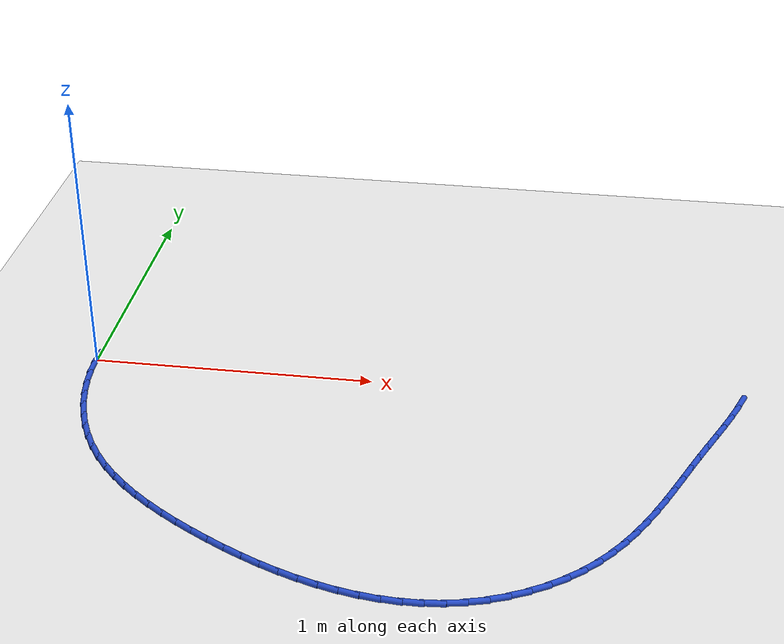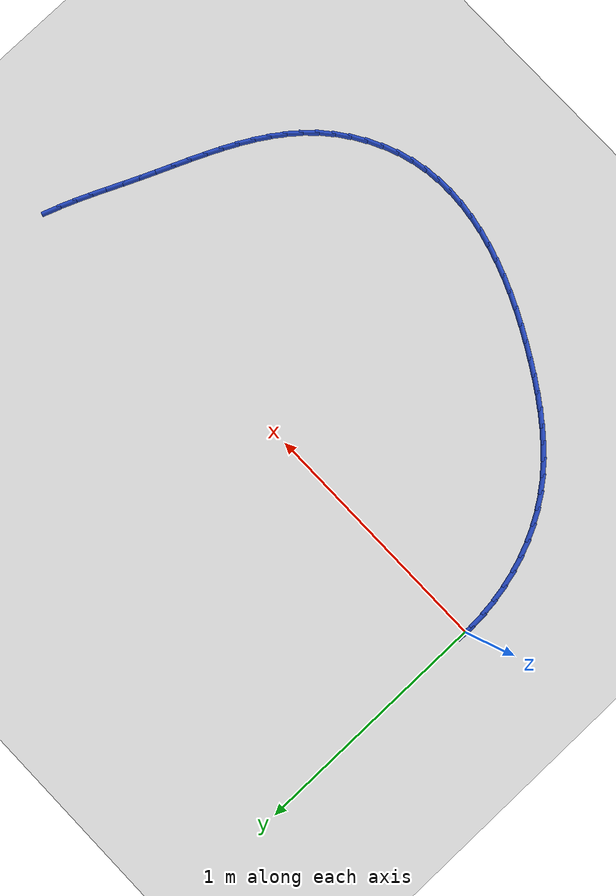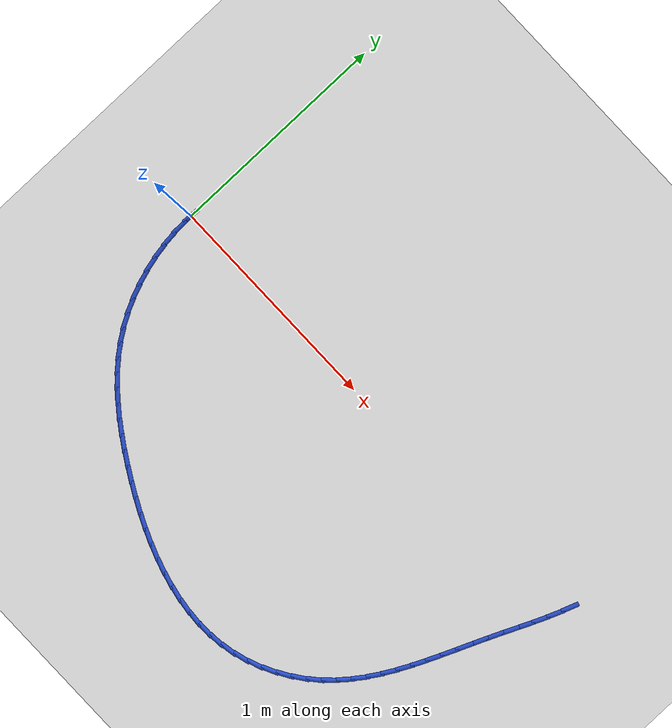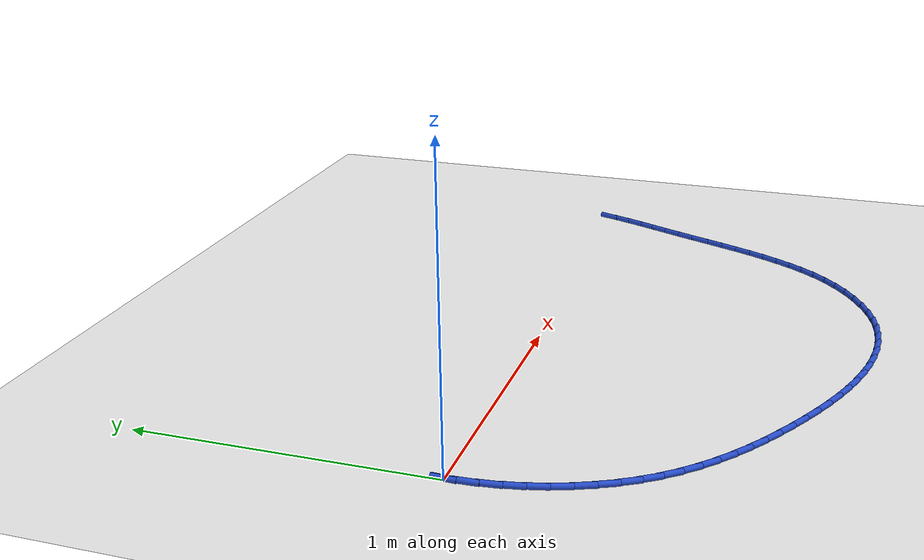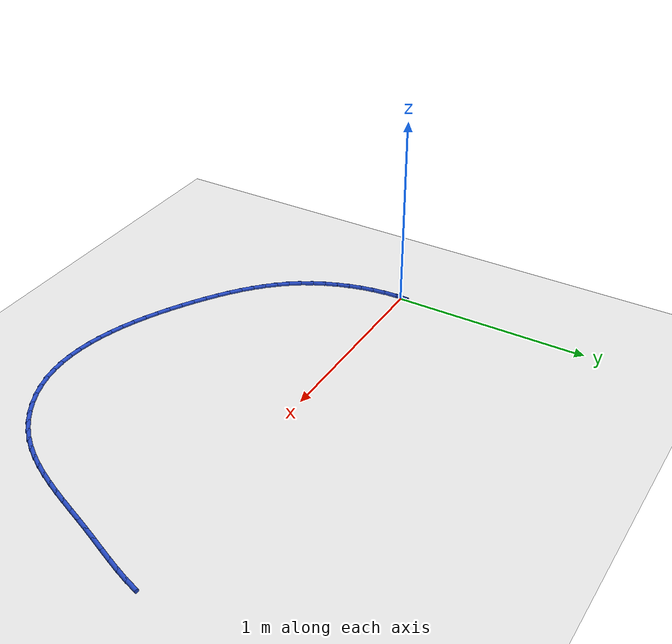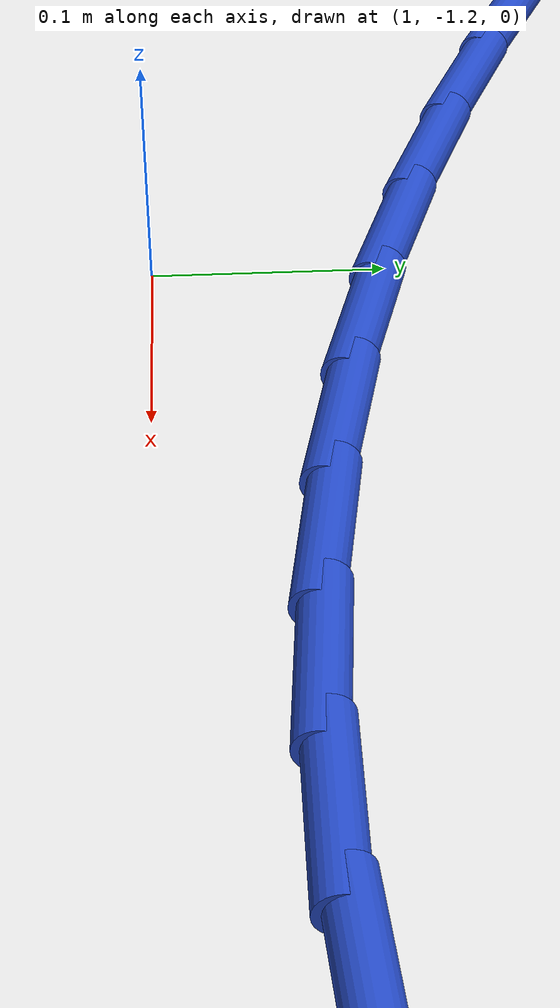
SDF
<sdf version="1.6">
 <world name="default">
  <model name="ground_plane">
   <static>1</static>
   <link name="link">
    <collision name="collision">
     <geometry><plane><normal>0 0 1</normal><size>100 100</size></plane></geometry>
     <surface><friction><ode><mu>100</mu><mu2>50</mu2></ode></friction></surface>
    </collision>
    <visual name="visual">
     <cast_shadows>0</cast_shadows>
     <geometry><plane><normal>0 0 1</normal><size>100 100</size></plane></geometry>
     <material>
      <script><uri>file://media/materials/scripts/gazebo.material</uri><name>Gazebo/WhiteGlow</name></script>
     </material>
    </visual>
   </link>
  </model>
  <model name="line">
   <link name="link_0">
    <pose>-5.551115123125783e-17 2.7755575615628914e-17 0.01 0 1.57 1.5302015686070916</pose>
    <collision name="collision">
     <geometry><cylinder><radius>0.01</radius><length>0.08</length></cylinder></geometry>
    </collision>
    <visual name="visual">
     <material>
      <script><name>Gazebo/Blue</name><uri>file://media/materials/scripts/gazebo.material</uri></script>
     </material>
     <geometry><cylinder><radius>0.01</radius><length>0.08</length></cylinder></geometry>
    </visual>
   </link>
   <link name="link_56">
    <pose>2.2851389751988016 0.035989403165090875 0.01 0 1.57 1.2219647454686706</pose>
    <collision name="collision">
     <geometry><cylinder><radius>0.01</radius><length>0.08</length></cylinder></geometry>
    </collision>
    <visual name="visual">
     <material>
      <script><name>Gazebo/Blue</name><uri>file://media/materials/scripts/gazebo.material</uri></script>
     </material>
     <geometry><cylinder><radius>0.01</radius><length>0.08</length></cylinder></geometry>
    </visual>
   </link>
   <link name="link_57">
    <pose>2.2627408414082852 -0.025593848850915285 0.01 0 1.57 1.1849846484080597</pose>
    <collision name="collision">
     <geometry><cylinder><radius>0.01</radius><length>0.08</length></cylinder></geometry>
    </collision>
    <visual name="visual">
     <material>
      <script><name>Gazebo/Blue</name><uri>file://media/materials/scripts/gazebo.material</uri></script>
     </material>
     <geometry><cylinder><radius>0.01</radius><length>0.08</length></cylinder></geometry>
    </visual>
   </link>
   <link name="link_58">
    <pose>2.237640490478313 -0.08739190899454982 0.01 0 1.57 1.1612847978690821</pose>
    <collision name="collision">
     <geometry><cylinder><radius>0.01</radius><length>0.08</length></cylinder></geometry>
    </collision>
    <visual name="visual">
     <material>
      <script><name>Gazebo/Blue</name><uri>file://media/materials/scripts/gazebo.material</uri></script>
     </material>
     <geometry><cylinder><radius>0.01</radius><length>0.08</length></cylinder></geometry>
    </visual>
   </link>
   <link name="link_59">
    <pose>2.21073471875153 -0.14937955009776718 0.01 0 1.57 1.1500048682173099</pose>
    <collision name="collision">
     <geometry><cylinder><radius>0.01</radius><length>0.08</length></cylinder></geometry>
    </collision>
    <visual name="visual">
     <material>
      <script><name>Gazebo/Blue</name><uri>file://media/materials/scripts/gazebo.material</uri></script>
     </material>
     <geometry><cylinder><radius>0.01</radius><length>0.08</length></cylinder></geometry>
    </visual>
   </link>
   <link name="link_60">
    <pose>2.1829203225705878 -0.21153154499251892 0.01 0 1.57 1.1506796267001262</pose>
    <collision name="collision">
     <geometry><cylinder><radius>0.01</radius><length>0.08</length></cylinder></geometry>
    </collision>
    <visual name="visual">
     <material>
      <script><name>Gazebo/Blue</name><uri>file://media/materials/scripts/gazebo.material</uri></script>
     </material>
     <geometry><cylinder><radius>0.01</radius><length>0.08</length></cylinder></geometry>
    </visual>
   </link>
   <link name="link_61">
    <pose>2.1550940982781337 -0.2738226665107596 0.01 0 1.57 1.1617821363811813</pose>
    <collision name="collision">
     <geometry><cylinder><radius>0.01</radius><length>0.08</length></cylinder></geometry>
    </collision>
    <visual name="visual">
     <material>
      <script><name>Gazebo/Blue</name><uri>file://media/materials/scripts/gazebo.material</uri></script>
     </material>
     <geometry><cylinder><radius>0.01</radius><length>0.08</length></cylinder></geometry>
    </visual>
   </link>
   <link name="link_62">
    <pose>2.1280527082807907 -0.33620768566147174 0.01 0 1.57 1.1710632435254287</pose>
    <collision name="collision">
     <geometry><cylinder><radius>0.01</radius><length>0.08</length></cylinder></geometry>
    </collision>
    <visual name="visual">
     <material>
      <script><name>Gazebo/Blue</name><uri>file://media/materials/scripts/gazebo.material</uri></script>
     </material>
     <geometry><cylinder><radius>0.01</radius><length>0.08</length></cylinder></geometry>
    </visual>
   </link>
   <link name="link_63">
    <pose>2.101747173709541 -0.39847245602402565 0.01 0 1.57 1.1722312233931684</pose>
    <collision name="collision">
     <geometry><cylinder><radius>0.01</radius><length>0.08</length></cylinder></geometry>
    </collision>
    <visual name="visual">
     <material>
      <script><name>Gazebo/Blue</name><uri>file://media/materials/scripts/gazebo.material</uri></script>
     </material>
     <geometry><cylinder><radius>0.01</radius><length>0.08</length></cylinder></geometry>
    </visual>
   </link>
   <link name="link_64">
    <pose>2.075703838064705 -0.46031800152737673 0.01 0 1.57 1.165064040381007</pose>
    <collision name="collision">
     <geometry><cylinder><radius>0.01</radius><length>0.08</length></cylinder></geometry>
    </collision>
    <visual name="visual">
     <material>
      <script><name>Gazebo/Blue</name><uri>file://media/materials/scripts/gazebo.material</uri></script>
     </material>
     <geometry><cylinder><radius>0.01</radius><length>0.08</length></cylinder></geometry>
    </visual>
   </link>
   <link name="link_65">
    <pose>2.0494458432339937 -0.5214447065761498 0.01 0 1.57 1.149315684127497</pose>
    <collision name="collision">
     <geometry><cylinder><radius>0.01</radius><length>0.08</length></cylinder></geometry>
    </collision>
    <visual name="visual">
     <material>
      <script><name>Gazebo/Blue</name><uri>file://media/materials/scripts/gazebo.material</uri></script>
     </material>
     <geometry><cylinder><radius>0.01</radius><length>0.08</length></cylinder></geometry>
    </visual>
   </link>
   <link name="link_66">
    <pose>2.0224963311051134 -0.5815529555749689 0.01 0 1.57 1.1246790638232074</pose>
    <collision name="collision">
     <geometry><cylinder><radius>0.01</radius><length>0.08</length></cylinder></geometry>
    </collision>
    <visual name="visual">
     <material>
      <script><name>Gazebo/Blue</name><uri>file://media/materials/scripts/gazebo.material</uri></script>
     </material>
     <geometry><cylinder><radius>0.01</radius><length>0.08</length></cylinder></geometry>
    </visual>
   </link>
   <link name="link_67">
    <pose>1.994378443565774 -0.6403431329284565 0.01 0 1.57 1.0908169313316305</pose>
    <collision name="collision">
     <geometry><cylinder><radius>0.01</radius><length>0.08</length></cylinder></geometry>
    </collision>
    <visual name="visual">
     <material>
      <script><name>Gazebo/Blue</name><uri>file://media/materials/scripts/gazebo.material</uri></script>
     </material>
     <geometry><cylinder><radius>0.01</radius><length>0.08</length></cylinder></geometry>
    </visual>
   </link>
   <link name="link_68">
    <pose>1.964615322503686 -0.6975156230412379 0.01 0 1.57 1.0474199735939402</pose>
    <collision name="collision">
     <geometry><cylinder><radius>0.01</radius><length>0.08</length></cylinder></geometry>
    </collision>
    <visual name="visual">
     <material>
      <script><name>Gazebo/Blue</name><uri>file://media/materials/scripts/gazebo.material</uri></script>
     </material>
     <geometry><cylinder><radius>0.01</radius><length>0.08</length></cylinder></geometry>
    </visual>
   </link>
   <link name="link_69">
    <pose>1.9327301098065586 -0.7527708103179358 0.01 0 1.57 0.994298013707</pose>
    <collision name="collision">
     <geometry><cylinder><radius>0.01</radius><length>0.08</length></cylinder></geometry>
    </collision>
    <visual name="visual">
     <material>
      <script><name>Gazebo/Blue</name><uri>file://media/materials/scripts/gazebo.material</uri></script>
     </material>
     <geometry><cylinder><radius>0.01</radius><length>0.08</length></cylinder></geometry>
    </visual>
   </link>
   <link name="link_70">
    <pose>1.898245947362099 -0.8058090791631746 0.01 0 1.57 0.9315056849116351</pose>
    <collision name="collision">
     <geometry><cylinder><radius>0.01</radius><length>0.08</length></cylinder></geometry>
    </collision>
    <visual name="visual">
     <material>
      <script><name>Gazebo/Blue</name><uri>file://media/materials/scripts/gazebo.material</uri></script>
     </material>
     <geometry><cylinder><radius>0.01</radius><length>0.08</length></cylinder></geometry>
    </visual>
   </link>
   <link name="link_71">
    <pose>1.860685977058017 -0.856330813981577 0.01 0 1.57 0.8594919645944271</pose>
    <collision name="collision">
     <geometry><cylinder><radius>0.01</radius><length>0.08</length></cylinder></geometry>
    </collision>
    <visual name="visual">
     <material>
      <script><name>Gazebo/Blue</name><uri>file://media/materials/scripts/gazebo.material</uri></script>
     </material>
     <geometry><cylinder><radius>0.01</radius><length>0.08</length></cylinder></geometry>
    </visual>
   </link>
   <link name="link_72">
    <pose>1.819573340782022 -0.904036399177768 0.01 0 1.57 0.7792427948911623</pose>
    <collision name="collision">
     <geometry><cylinder><radius>0.01</radius><length>0.08</length></cylinder></geometry>
    </collision>
    <visual name="visual">
     <material>
      <script><name>Gazebo/Blue</name><uri>file://media/materials/scripts/gazebo.material</uri></script>
     </material>
     <geometry><cylinder><radius>0.01</radius><length>0.08</length></cylinder></geometry>
    </visual>
   </link>
   <link name="link_73">
    <pose>1.7744311804218236 -0.9486262191563706 0.01 0 1.57 0.6935382522025019</pose>
    <collision name="collision">
     <geometry><cylinder><radius>0.01</radius><length>0.08</length></cylinder></geometry>
    </collision>
    <visual name="visual">
     <material>
      <script><name>Gazebo/Blue</name><uri>file://media/materials/scripts/gazebo.material</uri></script>
     </material>
     <geometry><cylinder><radius>0.01</radius><length>0.08</length></cylinder></geometry>
    </visual>
   </link>
   <link name="link_74">
    <pose>1.7249335217711403 -0.9897737212807624 0.01 0 1.57 0.608905244263258</pose>
    <collision name="collision">
     <geometry><cylinder><radius>0.01</radius><length>0.08</length></cylinder></geometry>
    </collision>
    <visual name="visual">
     <material>
      <script><name>Gazebo/Blue</name><uri>file://media/materials/scripts/gazebo.material</uri></script>
     </material>
     <geometry><cylinder><radius>0.01</radius><length>0.08</length></cylinder></geometry>
    </visual>
   </link>
   <link name="link_75">
    <pose>1.6715253911046664 -1.0270147075397655 0.01 0 1.57 0.5253486646728256</pose>
    <collision name="collision">
     <geometry><cylinder><radius>0.01</radius><length>0.08</length></cylinder></geometry>
    </collision>
    <visual name="visual">
     <material>
      <script><name>Gazebo/Blue</name><uri>file://media/materials/scripts/gazebo.material</uri></script>
     </material>
     <geometry><cylinder><radius>0.01</radius><length>0.08</length></cylinder></geometry>
    </visual>
   </link>
   <link name="link_76">
    <pose>1.6148974368951838 -1.0598411294184893 0.01 0 1.57 0.44074439578879765</pose>
    <collision name="collision">
     <geometry><cylinder><radius>0.01</radius><length>0.08</length></cylinder></geometry>
    </collision>
    <visual name="visual">
     <material>
      <script><name>Gazebo/Blue</name><uri>file://media/materials/scripts/gazebo.material</uri></script>
     </material>
     <geometry><cylinder><radius>0.01</radius><length>0.08</length></cylinder></geometry>
    </visual>
   </link>
   <link name="link_77">
    <pose>1.5557404122569543 -1.0877449197205795 0.01 0 1.57 0.35300660497378583</pose>
    <collision name="collision">
     <geometry><cylinder><radius>0.01</radius><length>0.08</length></cylinder></geometry>
    </collision>
    <visual name="visual">
     <material>
      <script><name>Gazebo/Blue</name><uri>file://media/materials/scripts/gazebo.material</uri></script>
     </material>
     <geometry><cylinder><radius>0.01</radius><length>0.08</length></cylinder></geometry>
    </visual>
   </link>
   <link name="link_78">
    <pose>1.4947450703042353 -1.1102180112496838 0.01 0 1.57 0.26025731668019475</pose>
    <collision name="collision">
     <geometry><cylinder><radius>0.01</radius><length>0.08</length></cylinder></geometry>
    </collision>
    <visual name="visual">
     <material>
      <script><name>Gazebo/Blue</name><uri>file://media/materials/scripts/gazebo.material</uri></script>
     </material>
     <geometry><cylinder><radius>0.01</radius><length>0.08</length></cylinder></geometry>
    </visual>
   </link>
   <link name="link_79">
    <pose>1.4325917698611639 -1.1267692541002705 0.01 0 1.57 0.16622556887214338</pose>
    <collision name="collision">
     <geometry><cylinder><radius>0.01</radius><length>0.08</length></cylinder></geometry>
    </collision>
    <visual name="visual">
     <material>
      <script><name>Gazebo/Blue</name><uri>file://media/materials/scripts/gazebo.material</uri></script>
     </material>
     <geometry><cylinder><radius>0.01</radius><length>0.08</length></cylinder></geometry>
    </visual>
   </link>
   <link name="link_80">
    <pose>1.3697077006933287 -1.1373195452251181 0.01 0 1.57 0.07700323736442892</pose>
    <collision name="collision">
     <geometry><cylinder><radius>0.01</radius><length>0.08</length></cylinder></geometry>
    </collision>
    <visual name="visual">
     <material>
      <script><name>Gazebo/Blue</name><uri>file://media/materials/scripts/gazebo.material</uri></script>
     </material>
     <geometry><cylinder><radius>0.01</radius><length>0.08</length></cylinder></geometry>
    </visual>
   </link>
   <link name="link_81">
    <pose>1.3062587929888527 -1.1422149962091537 0.01 0 1.57 -0.006165392657503148</pose>
    <collision name="collision">
     <geometry><cylinder><radius>0.01</radius><length>0.08</length></cylinder></geometry>
    </collision>
    <visual name="visual">
     <material>
      <script><name>Gazebo/Blue</name><uri>file://media/materials/scripts/gazebo.material</uri></script>
     </material>
     <geometry><cylinder><radius>0.01</radius><length>0.08</length></cylinder></geometry>
    </visual>
   </link>
   <link name="link_82">
    <pose>1.2423989640399897 -1.1418212702998518 0.01 0 1.57 -0.0827411408506062</pose>
    <collision name="collision">
     <geometry><cylinder><radius>0.01</radius><length>0.08</length></cylinder></geometry>
    </collision>
    <visual name="visual">
     <material>
      <script><name>Gazebo/Blue</name><uri>file://media/materials/scripts/gazebo.material</uri></script>
     </material>
     <geometry><cylinder><radius>0.01</radius><length>0.08</length></cylinder></geometry>
    </visual>
   </link>
   <link name="link_83">
    <pose>1.1782821311389937 -1.1365040307446894 0.01 0 1.57 -0.15257482682143667</pose>
    <collision name="collision">
     <geometry><cylinder><radius>0.01</radius><length>0.08</length></cylinder></geometry>
    </collision>
    <visual name="visual">
     <material>
      <script><name>Gazebo/Blue</name><uri>file://media/materials/scripts/gazebo.material</uri></script>
     </material>
     <geometry><cylinder><radius>0.01</radius><length>0.08</length></cylinder></geometry>
    </visual>
   </link>
   <link name="link_84">
    <pose>1.1140622115781211 -1.1266289407911416 0.01 0 1.57 -0.2158081169948956</pose>
    <collision name="collision">
     <geometry><cylinder><radius>0.01</radius><length>0.08</length></cylinder></geometry>
    </collision>
    <visual name="visual">
     <material>
      <script><name>Gazebo/Blue</name><uri>file://media/materials/scripts/gazebo.material</uri></script>
     </material>
     <geometry><cylinder><radius>0.01</radius><length>0.08</length></cylinder></geometry>
    </visual>
   </link>
   <link name="link_85">
    <pose>1.0498931226496255 -1.1125616636866849 0.01 0 1.57 -0.27277362420766754</pose>
    <collision name="collision">
     <geometry><cylinder><radius>0.01</radius><length>0.08</length></cylinder></geometry>
    </collision>
    <visual name="visual">
     <material>
      <script><name>Gazebo/Blue</name><uri>file://media/materials/scripts/gazebo.material</uri></script>
     </material>
     <geometry><cylinder><radius>0.01</radius><length>0.08</length></cylinder></geometry>
    </visual>
   </link>
   <link name="link_86">
    <pose>0.985928781645763 -1.0946678626787951 0.01 0 1.57 -0.3239106375531358</pose>
    <collision name="collision">
     <geometry><cylinder><radius>0.01</radius><length>0.08</length></cylinder></geometry>
    </collision>
    <visual name="visual">
     <material>
      <script><name>Gazebo/Blue</name><uri>file://media/materials/scripts/gazebo.material</uri></script>
     </material>
     <geometry><cylinder><radius>0.01</radius><length>0.08</length></cylinder></geometry>
    </visual>
   </link>
   <link name="link_87">
    <pose>0.9223231058587871 -1.0733132010149482 0.01 0 1.57 -0.36970200235435374</pose>
    <collision name="collision">
     <geometry><cylinder><radius>0.01</radius><length>0.08</length></cylinder></geometry>
    </collision>
    <visual name="visual">
     <material>
      <script><name>Gazebo/Blue</name><uri>file://media/materials/scripts/gazebo.material</uri></script>
     </material>
     <geometry><cylinder><radius>0.01</radius><length>0.08</length></cylinder></geometry>
    </visual>
   </link>
   <link name="link_88">
    <pose>0.8592300125809542 -1.0488633419426205 0.01 0 1.57 -0.41063103386415584</pose>
    <collision name="collision">
     <geometry><cylinder><radius>0.01</radius><length>0.08</length></cylinder></geometry>
    </collision>
    <visual name="visual">
     <material>
      <script><name>Gazebo/Blue</name><uri>file://media/materials/scripts/gazebo.material</uri></script>
     </material>
     <geometry><cylinder><radius>0.01</radius><length>0.08</length></cylinder></geometry>
    </visual>
   </link>
   <link name="link_89">
    <pose>0.7968034191045176 -1.021683948709288 0.01 0 1.57 -0.44715447003872577</pose>
    <collision name="collision">
     <geometry><cylinder><radius>0.01</radius><length>0.08</length></cylinder></geometry>
    </collision>
    <visual name="visual">
     <material>
      <script><name>Gazebo/Blue</name><uri>file://media/materials/scripts/gazebo.material</uri></script>
     </material>
     <geometry><cylinder><radius>0.01</radius><length>0.08</length></cylinder></geometry>
    </visual>
   </link>
   <link name="link_90">
    <pose>0.7351972427217336 -0.9921406845624262 0.01 0 1.57 -0.47968693321298955</pose>
    <collision name="collision">
     <geometry><cylinder><radius>0.01</radius><length>0.08</length></cylinder></geometry>
    </collision>
    <visual name="visual">
     <material>
      <script><name>Gazebo/Blue</name><uri>file://media/materials/scripts/gazebo.material</uri></script>
     </material>
     <geometry><cylinder><radius>0.01</radius><length>0.08</length></cylinder></geometry>
    </visual>
   </link>
   <link name="link_91">
    <pose>0.6745654007248556 -0.9605992127495112 0.01 0 1.57 -0.5085929300151483</pose>
    <collision name="collision">
     <geometry><cylinder><radius>0.01</radius><length>0.08</length></cylinder></geometry>
    </collision>
    <visual name="visual">
     <material>
      <script><name>Gazebo/Blue</name><uri>file://media/materials/scripts/gazebo.material</uri></script>
     </material>
     <geometry><cylinder><radius>0.01</radius><length>0.08</length></cylinder></geometry>
    </visual>
   </link>
   <link name="link_92">
    <pose>0.6150618104061397 -0.9274251965180194 0.01 0 1.57 -0.534341483303284</pose>
    <collision name="collision">
     <geometry><cylinder><radius>0.01</radius><length>0.08</length></cylinder></geometry>
    </collision>
    <visual name="visual">
     <material>
      <script><name>Gazebo/Blue</name><uri>file://media/materials/scripts/gazebo.material</uri></script>
     </material>
     <geometry><cylinder><radius>0.01</radius><length>0.08</length></cylinder></geometry>
    </visual>
   </link>
   <link name="link_93">
    <pose>0.5568426442320163 -0.892973199690797 0.01 0 1.57 -0.5612104432550035</pose>
    <collision name="collision">
     <geometry><cylinder><radius>0.01</radius><length>0.08</length></cylinder></geometry>
    </collision>
    <visual name="visual">
     <material>
      <script><name>Gazebo/Blue</name><uri>file://media/materials/scripts/gazebo.material</uri></script>
     </material>
     <geometry><cylinder><radius>0.01</radius><length>0.08</length></cylinder></geometry>
    </visual>
   </link>
   <link name="link_94">
    <pose>0.5001213135544172 -0.8573160700697482 0.01 0 1.57 -0.5936947018287925</pose>
    <collision name="collision">
     <geometry><cylinder><radius>0.01</radius><length>0.08</length></cylinder></geometry>
    </collision>
    <visual name="visual">
     <material>
      <script><name>Gazebo/Blue</name><uri>file://media/materials/scripts/gazebo.material</uri></script>
     </material>
     <geometry><cylinder><radius>0.01</radius><length>0.08</length></cylinder></geometry>
    </visual>
   </link>
   <link name="link_95">
    <pose>0.44517162104880037 -0.8202294238944373 0.01 0 1.57 -0.6322620902058508</pose>
    <collision name="collision">
     <geometry><cylinder><radius>0.01</radius><length>0.08</length></cylinder></geometry>
    </collision>
    <visual name="visual">
     <material>
      <script><name>Gazebo/Blue</name><uri>file://media/materials/scripts/gazebo.material</uri></script>
     </material>
     <geometry><cylinder><radius>0.01</radius><length>0.08</length></cylinder></geometry>
    </visual>
   </link>
   <link name="link_96">
    <pose>0.3922702556205443 -0.7814746720752894 0.01 0 1.57 -0.6771519329736811</pose>
    <collision name="collision">
     <geometry><cylinder><radius>0.01</radius><length>0.08</length></cylinder></geometry>
    </collision>
    <visual name="visual">
     <material>
      <script><name>Gazebo/Blue</name><uri>file://media/materials/scripts/gazebo.material</uri></script>
     </material>
     <geometry><cylinder><radius>0.01</radius><length>0.08</length></cylinder></geometry>
    </visual>
   </link>
   <link name="link_97">
    <pose>0.3416939061750253 -0.7408132255227294 0.01 0 1.57 -0.7285325069261429</pose>
    <collision name="collision">
     <geometry><cylinder><radius>0.01</radius><length>0.08</length></cylinder></geometry>
    </collision>
    <visual name="visual">
     <material>
      <script><name>Gazebo/Blue</name><uri>file://media/materials/scripts/gazebo.material</uri></script>
     </material>
     <geometry><cylinder><radius>0.01</radius><length>0.08</length></cylinder></geometry>
    </visual>
   </link>
   <link name="link_98">
    <pose>0.2937192616176203 -0.6980064951471818 0.01 0 1.57 -0.7864431936052261</pose>
    <collision name="collision">
     <geometry><cylinder><radius>0.01</radius><length>0.08</length></cylinder></geometry>
    </collision>
    <visual name="visual">
     <material>
      <script><name>Gazebo/Blue</name><uri>file://media/materials/scripts/gazebo.material</uri></script>
     </material>
     <geometry><cylinder><radius>0.01</radius><length>0.08</length></cylinder></geometry>
    </visual>
   </link>
   <link name="link_99">
    <pose>0.24862301085370755 -0.6528158918590724 0.01 0 1.57 -0.8507270192186503</pose>
    <collision name="collision">
     <geometry><cylinder><radius>0.01</radius><length>0.08</length></cylinder></geometry>
    </collision>
    <visual name="visual">
     <material>
      <script><name>Gazebo/Blue</name><uri>file://media/materials/scripts/gazebo.material</uri></script>
     </material>
     <geometry><cylinder><radius>0.01</radius><length>0.08</length></cylinder></geometry>
    </visual>
   </link>
   <link name="link_100">
    <pose>0.20668184278866325 -0.605002826568825 0.01 0 1.57 -0.9209625541825733</pose>
    <collision name="collision">
     <geometry><cylinder><radius>0.01</radius><length>0.08</length></cylinder></geometry>
    </collision>
    <visual name="visual">
     <material>
      <script><name>Gazebo/Blue</name><uri>file://media/materials/scripts/gazebo.material</uri></script>
     </material>
     <geometry><cylinder><radius>0.01</radius><length>0.08</length></cylinder></geometry>
    </visual>
   </link>
   <link name="link_101">
    <pose>0.1681724463278656 -0.5543287101868657 0.01 0 1.57 -0.9958791219469513</pose>
    <collision name="collision">
     <geometry><cylinder><radius>0.01</radius><length>0.08</length></cylinder></geometry>
    </collision>
    <visual name="visual">
     <material>
      <script><name>Gazebo/Blue</name><uri>file://media/materials/scripts/gazebo.material</uri></script>
     </material>
     <geometry><cylinder><radius>0.01</radius><length>0.08</length></cylinder></geometry>
    </visual>
   </link>
   <link name="link_102">
    <pose>0.13335837014701113 -0.5005973084242878 0.01 0 1.57 -1.0701023614557417</pose>
    <collision name="collision">
     <geometry><cylinder><radius>0.01</radius><length>0.08</length></cylinder></geometry>
    </collision>
    <visual name="visual">
     <material>
      <script><name>Gazebo/Blue</name><uri>file://media/materials/scripts/gazebo.material</uri></script>
     </material>
     <geometry><cylinder><radius>0.01</radius><length>0.08</length></cylinder></geometry>
    </visual>
   </link>
   <link name="link_103">
    <pose>0.10238478795550066 -0.44399394410526377 0.01 0 1.57 -1.141472769089921</pose>
    <collision name="collision">
     <geometry><cylinder><radius>0.01</radius><length>0.08</length></cylinder></geometry>
    </collision>
    <visual name="visual">
     <material>
      <script><name>Gazebo/Blue</name><uri>file://media/materials/scripts/gazebo.material</uri></script>
     </material>
     <geometry><cylinder><radius>0.01</radius><length>0.08</length></cylinder></geometry>
    </visual>
   </link>
   <link name="link_104">
    <pose>0.07533418200354607 -0.3849060129493588 0.01 0 1.57 -1.2105648948025232</pose>
    <collision name="collision">
     <geometry><cylinder><radius>0.01</radius><length>0.08</length></cylinder></geometry>
    </collision>
    <visual name="visual">
     <material>
      <script><name>Gazebo/Blue</name><uri>file://media/materials/scripts/gazebo.material</uri></script>
     </material>
     <geometry><cylinder><radius>0.01</radius><length>0.08</length></cylinder></geometry>
    </visual>
   </link>
   <link name="link_105">
    <pose>0.05228846216038904 -0.32372275562729846 0.01 0 1.57 -1.277996211121522</pose>
    <collision name="collision">
     <geometry><cylinder><radius>0.01</radius><length>0.08</length></cylinder></geometry>
    </collision>
    <visual name="visual">
     <material>
      <script><name>Gazebo/Blue</name><uri>file://media/materials/scripts/gazebo.material</uri></script>
     </material>
     <geometry><cylinder><radius>0.01</radius><length>0.08</length></cylinder></geometry>
    </visual>
   </link>
   <link name="link_106">
    <pose>0.03332953829527009 -0.2608334128098055 0.01 0 1.57 -1.344390776331398</pose>
    <collision name="collision">
     <geometry><cylinder><radius>0.01</radius><length>0.08</length></cylinder></geometry>
    </collision>
    <visual name="visual">
     <material>
      <script><name>Gazebo/Blue</name><uri>file://media/materials/scripts/gazebo.material</uri></script>
     </material>
     <geometry><cylinder><radius>0.01</radius><length>0.08</length></cylinder></geometry>
    </visual>
   </link>
   <link name="link_107">
    <pose>0.018539320277430806 -0.19662722516760578 0.01 0 1.57 -1.4103722040285538</pose>
    <collision name="collision">
     <geometry><cylinder><radius>0.01</radius><length>0.08</length></cylinder></geometry>
    </collision>
    <visual name="visual">
     <material>
      <script><name>Gazebo/Blue</name><uri>file://media/materials/scripts/gazebo.material</uri></script>
     </material>
     <geometry><cylinder><radius>0.01</radius><length>0.08</length></cylinder></geometry>
    </visual>
   </link>
   <link name="link_108">
    <pose>0.007999717976111853 -0.13149343337142155 0.01 0 1.57 -1.476560163617824</pose>
    <collision name="collision">
     <geometry><cylinder><radius>0.01</radius><length>0.08</length></cylinder></geometry>
    </collision>
    <visual name="visual">
     <material>
      <script><name>Gazebo/Blue</name><uri>file://media/materials/scripts/gazebo.material</uri></script>
     </material>
     <geometry><cylinder><radius>0.01</radius><length>0.08</length></cylinder></geometry>
    </visual>
   </link>
   <link name="link_109">
    <pose>0.0017926412605546015 -0.06582127809197885 0.01 0 1.57 -1.543568076560659</pose>
    <collision name="collision">
     <geometry><cylinder><radius>0.01</radius><length>0.08</length></cylinder></geometry>
    </collision>
    <visual name="visual">
     <material>
      <script><name>Gazebo/Blue</name><uri>file://media/materials/scripts/gazebo.material</uri></script>
     </material>
     <geometry><cylinder><radius>0.01</radius><length>0.08</length></cylinder></geometry>
    </visual>
   </link>
   <link name="link_110">
    <pose>-4.5102810375396984e-17 -2.7755575615628914e-17 0.01 0 1.57 1.5295928191328017</pose>
    <collision name="collision">
     <geometry><cylinder><radius>0.01</radius><length>0.08</length></cylinder></geometry>
    </collision>
    <visual name="visual">
     <material>
      <script><name>Gazebo/Blue</name><uri>file://media/materials/scripts/gazebo.material</uri></script>
     </material>
     <geometry><cylinder><radius>0.01</radius><length>0.08</length></cylinder></geometry>
    </visual>
   </link>
  </model>
 </world>
</sdf>
